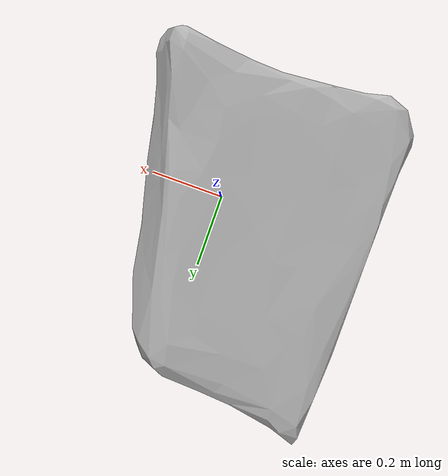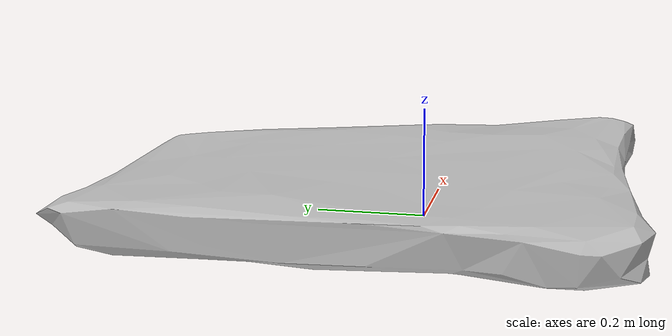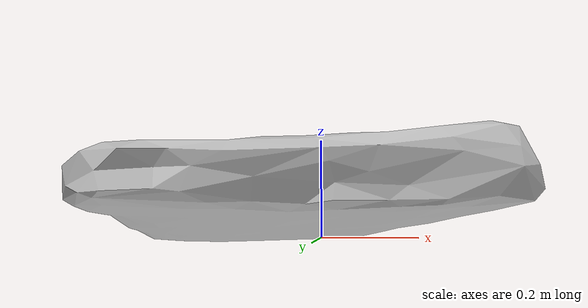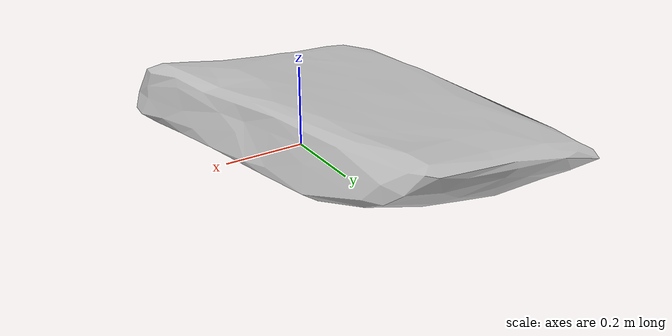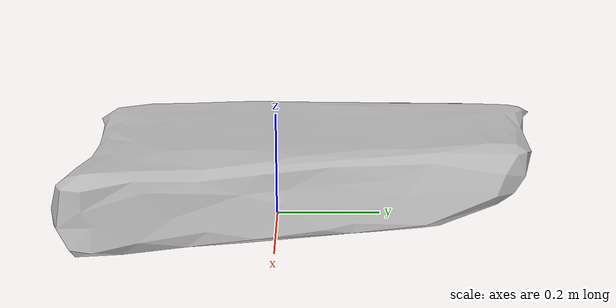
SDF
<?xml version="1.0" ?>
<sdf version="1.4">
    <model name="stone2">
      <pose>0 0 0 0 0 0</pose>
        <static>false</static>
	  <link name="stone2_link">
	    <collision name="stone2_collision">
	      <geometry>
                <mesh>
		  <uri>model://stone2/meshes/Intresto_rock_for_landscape_03.dae</uri>
                    <scale>2 2 1</scale>
		</mesh>
	      </geometry>
	    </collision>

	    <visual name="stone2_visual">
	      <geometry>
            	<mesh>
		  <uri>model://stone2/meshes/Intresto_rock_for_landscape_03.dae</uri>
                  <scale>2 2 1</scale>
		</mesh>
	      </geometry>
	    </visual>

    </link>
  </model>
</sdf>
